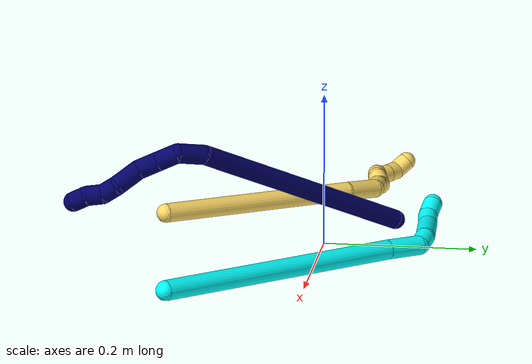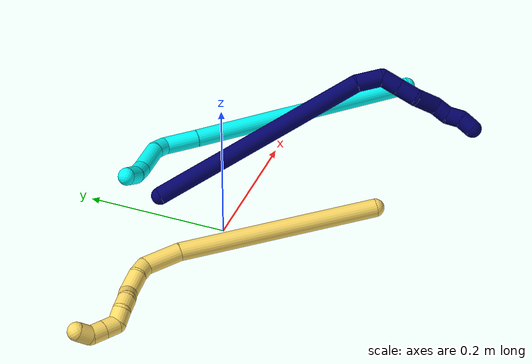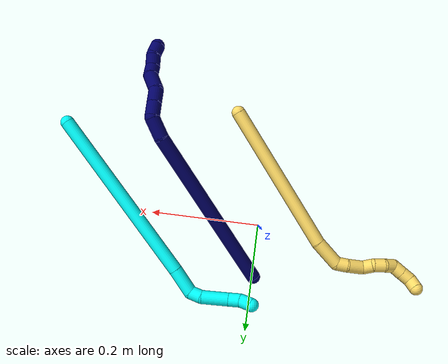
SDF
<sdf version="1.7">
 <world name="default">
  <model name="photoneo_s_sensor">
   <static>1</static>
   <pose>0 0 2 1.57079 1.57079 3.14159</pose>
   <link name="link">
    <inertial><mass>0.1</mass></inertial>
    <sensor name="sensor" type="depth">
     <update_rate>30</update_rate>
     <camera>
      <horizontal_fov>1.22</horizontal_fov>
      <image><width>1920</width><height>1200</height><format>B8G8R8</format></image>
      <clip><near>0.1</near><far>4</far></clip>
      <depth_camera><output>points</output></depth_camera>
     </camera>
     <plugin name="camera_plugin" filename="libgazebo_ros_depth_camera.so">
      <baseline>0.2</baseline>
      <alwaysOn>1</alwaysOn>
      <updateRate>0.0</updateRate>
      <cameraName>camera_ir</cameraName>
      <imageTopicName>/camera/color/image_raw</imageTopicName>
      <cameraInfoTopicName>/camera/color/camera_info</cameraInfoTopicName>
      <depthImageTopicName>/camera/depth/image_raw</depthImageTopicName>
      <depthImageCameraInfoTopicName>/camera/depth/camera_info</depthImageCameraInfoTopicName>
      <pointCloudTopicName>/camera/depth/points</pointCloudTopicName>
      <frameName>fr_optical</frameName>
      <pointCloudCutoff>0.1</pointCloudCutoff>
      <pointCloudCutoffMax>2.0</pointCloudCutoffMax>
      <distortionK1>0</distortionK1>
      <distortionK2>0</distortionK2>
      <distortionK3>0</distortionK3>
      <distortionT1>0</distortionT1>
      <distortionT2>0</distortionT2>
      <CxPrime>0</CxPrime>
      <Cx>0</Cx>
      <Cy>0</Cy>
      <focalLength>0</focalLength>
      <hackBaseline>0</hackBaseline>
     </plugin>
    </sensor>
   </link>
  </model>
  <model name="bin">
   <static>1</static>
   <link name="bottom">
    <collision name="collision-bottom">
     <pose>0 0 -0.01 0 -0 0</pose>
     <geometry><box><size>0.8 0.6 0.02</size></box></geometry>
     <surface>
      <friction><ode><mu>100</mu><mu2>100</mu2></ode></friction>
      <contact><collide_bitmask>65535</collide_bitmask></contact>
     </surface>
    </collision>
   </link>
   <link name="west_wall">
    <collision name="collision-west_wall">
     <pose>-0.41 0 0.1 0 -0 0</pose>
     <geometry><box><size>0.02 0.6 0.2</size></box></geometry>
     <surface>
      <friction><ode><mu>100</mu><mu2>100</mu2></ode></friction>
      <contact><collide_bitmask>65535</collide_bitmask></contact>
     </surface>
    </collision>
   </link>
   <link name="east_wall">
    <collision name="collision-east_wall">
     <pose>0.41 0 0.1 0 -0 0</pose>
     <geometry><box><size>0.02 0.6 0.2</size></box></geometry>
     <surface>
      <friction><ode><mu>100</mu><mu2>100</mu2></ode></friction>
      <contact><collide_bitmask>65535</collide_bitmask></contact>
     </surface>
    </collision>
   </link>
   <link name="south_wall">
    <collision name="collision-south_wall">
     <pose>0 -0.31 0.1 0 -0 0</pose>
     <geometry><box><size>0.8 0.02 0.2</size></box></geometry>
     <surface>
      <friction><ode><mu>100</mu><mu2>100</mu2></ode></friction>
      <contact><collide_bitmask>65535</collide_bitmask></contact>
     </surface>
    </collision>
   </link>
   <link name="north_wall">
    <collision name="collision-north_wall">
     <pose>0 0.31 0.1 0 -0 0</pose>
     <geometry><box><size>0.8 0.02 0.2</size></box></geometry>
     <surface>
      <friction><ode><mu>100</mu><mu2>100</mu2></ode></friction>
      <contact><collide_bitmask>65535</collide_bitmask></contact>
     </surface>
    </collision>
   </link>
  </model>
  <model name="3">
   <static>0</static>
   <link name="3">
    <collision name="collision-cylinder-e_1_1_4">
     <pose>-0.087101 0.102652 -0.097759 -2.33179 -0.550975 1.16612</pose>
     <geometry><cylinder><radius>0.0125</radius><length>0.332751</length></cylinder></geometry>
     <surface>
      <friction><ode><mu>1.16</mu><mu2>1.16</mu2><slip1>0</slip1><slip2>0</slip2></ode></friction>
      <contact><ode><kp>1e+06</kp><kd>1</kd><max_vel>0</max_vel><min_depth>0.001</min_depth></ode></contact>
     </surface>
    </collision>
    <visual name="visual-cylinder-e_1_1_4">
     <pose>-0.087101 0.102652 -0.097759 -2.33179 -0.550975 1.16612</pose>
     <geometry><cylinder><radius>0.0125</radius><length>0.332751</length></cylinder></geometry>
     <material><ambient>0.003922 1 0.996078 1</ambient></material>
    </visual>
    <collision name="collision-cylinder-e_2_4_5">
     <pose>-0.186663 0.221406 -0.209261 -2.27731 -0.532048 1.06724</pose>
     <geometry><cylinder><radius>0.0125</radius><length>0.04913</length></cylinder></geometry>
     <surface>
      <friction><ode><mu>1.16</mu><mu2>1.16</mu2><slip1>0</slip1><slip2>0</slip2></ode></friction>
      <contact><ode><kp>1e+06</kp><kd>1</kd><max_vel>0</max_vel><min_depth>0.001</min_depth></ode></contact>
     </surface>
    </collision>
    <visual name="visual-cylinder-e_2_4_5">
     <pose>-0.186663 0.221406 -0.209261 -2.27731 -0.532048 1.06724</pose>
     <geometry><cylinder><radius>0.0125</radius><length>0.04913</length></cylinder></geometry>
     <material><ambient>0.003922 1 0.996078 1</ambient></material>
    </visual>
    <collision name="collision-cylinder-e_3_5_6">
     <pose>-0.205966 0.237972 -0.231606 -3.0877 -0.671167 2.98735</pose>
     <geometry><cylinder><radius>0.0125</radius><length>0.022001</length></cylinder></geometry>
     <surface>
      <friction><ode><mu>1.16</mu><mu2>1.16</mu2><slip1>0</slip1><slip2>0</slip2></ode></friction>
      <contact><ode><kp>1e+06</kp><kd>1</kd><max_vel>0</max_vel><min_depth>0.001</min_depth></ode></contact>
     </surface>
    </collision>
    <visual name="visual-cylinder-e_3_5_6">
     <pose>-0.205966 0.237972 -0.231606 -3.0877 -0.671167 2.98735</pose>
     <geometry><cylinder><radius>0.0125</radius><length>0.022001</length></cylinder></geometry>
     <material><ambient>0.003922 1 0.996078 1</ambient></material>
    </visual>
    <collision name="collision-cylinder-e_4_6_7">
     <pose>-0.221868 0.235346 -0.26346 3.00945 -0.368645 -2.45952</pose>
     <geometry><cylinder><radius>0.0125</radius><length>0.050291</length></cylinder></geometry>
     <surface>
      <friction><ode><mu>1.16</mu><mu2>1.16</mu2><slip1>0</slip1><slip2>0</slip2></ode></friction>
      <contact><ode><kp>1e+06</kp><kd>1</kd><max_vel>0</max_vel><min_depth>0.001</min_depth></ode></contact>
     </surface>
    </collision>
    <visual name="visual-cylinder-e_4_6_7">
     <pose>-0.221868 0.235346 -0.26346 3.00945 -0.368645 -2.45952</pose>
     <geometry><cylinder><radius>0.0125</radius><length>0.050291</length></cylinder></geometry>
     <material><ambient>0.003922 1 0.996078 1</ambient></material>
    </visual>
    <collision name="collision-cylinder-e_5_7_8">
     <pose>-0.236743 0.229522 -0.296032 2.85633 -0.539258 -2.18312</pose>
     <geometry><cylinder><radius>0.0125</radius><length>0.022641</length></cylinder></geometry>
     <surface>
      <friction><ode><mu>1.16</mu><mu2>1.16</mu2><slip1>0</slip1><slip2>0</slip2></ode></friction>
      <contact><ode><kp>1e+06</kp><kd>1</kd><max_vel>0</max_vel><min_depth>0.001</min_depth></ode></contact>
     </surface>
    </collision>
    <visual name="visual-cylinder-e_5_7_8">
     <pose>-0.236743 0.229522 -0.296032 2.85633 -0.539258 -2.18312</pose>
     <geometry><cylinder><radius>0.0125</radius><length>0.022641</length></cylinder></geometry>
     <material><ambient>0.003922 1 0.996078 1</ambient></material>
    </visual>
    <collision name="collision-cylinder-e_6_8_2">
     <pose>-0.251306 0.22574 -0.312886 3.00333 -0.855313 -2.84006</pose>
     <geometry><cylinder><radius>0.0125</radius><length>0.023186</length></cylinder></geometry>
     <surface>
      <friction><ode><mu>1.16</mu><mu2>1.16</mu2><slip1>0</slip1><slip2>0</slip2></ode></friction>
      <contact><ode><kp>1e+06</kp><kd>1</kd><max_vel>0</max_vel><min_depth>0.001</min_depth></ode></contact>
     </surface>
    </collision>
    <visual name="visual-cylinder-e_6_8_2">
     <pose>-0.251306 0.22574 -0.312886 3.00333 -0.855313 -2.84006</pose>
     <geometry><cylinder><radius>0.0125</radius><length>0.023186</length></cylinder></geometry>
     <material><ambient>0.003922 1 0.996078 1</ambient></material>
    </visual>
    <collision name="collision-sphere-2">
     <pose>-0.260056 0.224692 -0.320418 0 -0 0</pose>
     <geometry><sphere><radius>0.0125</radius></sphere></geometry>
     <surface>
      <friction><ode><mu>1.16</mu><mu2>1.16</mu2><slip1>0</slip1><slip2>0</slip2></ode></friction>
      <contact><ode><kp>1e+06</kp><kd>1</kd><max_vel>0</max_vel><min_depth>0.001</min_depth></ode></contact>
     </surface>
    </collision>
    <visual name="visual-sphere-2">
     <pose>-0.260056 0.224692 -0.320418 0 -0 0</pose>
     <geometry><sphere><radius>0.0125</radius></sphere></geometry>
     <material><ambient>0.003922 1 0.996078 1</ambient></material>
    </visual>
    <collision name="collision-sphere-4">
     <pose>-0.174201 0.205304 -0.195519 0 -0 0</pose>
     <geometry><sphere><radius>0.0125</radius></sphere></geometry>
     <surface>
      <friction><ode><mu>1.16</mu><mu2>1.16</mu2><slip1>0</slip1><slip2>0</slip2></ode></friction>
      <contact><ode><kp>1e+06</kp><kd>1</kd><max_vel>0</max_vel><min_depth>0.001</min_depth></ode></contact>
     </surface>
    </collision>
    <visual name="visual-sphere-4">
     <pose>-0.174201 0.205304 -0.195519 0 -0 0</pose>
     <geometry><sphere><radius>0.0125</radius></sphere></geometry>
     <material><ambient>0.003922 1 0.996078 1</ambient></material>
    </visual>
    <collision name="collision-sphere-1">
     <geometry><sphere><radius>0.0125</radius></sphere></geometry>
     <surface>
      <friction><ode><mu>1.16</mu><mu2>1.16</mu2><slip1>0</slip1><slip2>0</slip2></ode></friction>
      <contact><ode><kp>1e+06</kp><kd>1</kd><max_vel>0</max_vel><min_depth>0.001</min_depth></ode></contact>
     </surface>
    </collision>
    <visual name="visual-sphere-1">
     <geometry><sphere><radius>0.0125</radius></sphere></geometry>
     <material><ambient>0.003922 1 0.996078 1</ambient></material>
    </visual>
    <collision name="collision-sphere-8">
     <pose>-0.242556 0.226788 -0.305354 0 -0 0</pose>
     <geometry><sphere><radius>0.0125</radius></sphere></geometry>
     <surface>
      <friction><ode><mu>1.16</mu><mu2>1.16</mu2><slip1>0</slip1><slip2>0</slip2></ode></friction>
      <contact><ode><kp>1e+06</kp><kd>1</kd><max_vel>0</max_vel><min_depth>0.001</min_depth></ode></contact>
     </surface>
    </collision>
    <visual name="visual-sphere-8">
     <pose>-0.242556 0.226788 -0.305354 0 -0 0</pose>
     <geometry><sphere><radius>0.0125</radius></sphere></geometry>
     <material><ambient>0.003922 1 0.996078 1</ambient></material>
    </visual>
    <collision name="collision-sphere-5">
     <pose>-0.199125 0.237508 -0.223004 0 -0 0</pose>
     <geometry><sphere><radius>0.0125</radius></sphere></geometry>
     <surface>
      <friction><ode><mu>1.16</mu><mu2>1.16</mu2><slip1>0</slip1><slip2>0</slip2></ode></friction>
      <contact><ode><kp>1e+06</kp><kd>1</kd><max_vel>0</max_vel><min_depth>0.001</min_depth></ode></contact>
     </surface>
    </collision>
    <visual name="visual-sphere-5">
     <pose>-0.199125 0.237508 -0.223004 0 -0 0</pose>
     <geometry><sphere><radius>0.0125</radius></sphere></geometry>
     <material><ambient>0.003922 1 0.996078 1</ambient></material>
    </visual>
    <collision name="collision-sphere-6">
     <pose>-0.212807 0.238436 -0.240208 0 -0 0</pose>
     <geometry><sphere><radius>0.0125</radius></sphere></geometry>
     <surface>
      <friction><ode><mu>1.16</mu><mu2>1.16</mu2><slip1>0</slip1><slip2>0</slip2></ode></friction>
      <contact><ode><kp>1e+06</kp><kd>1</kd><max_vel>0</max_vel><min_depth>0.001</min_depth></ode></contact>
     </surface>
    </collision>
    <visual name="visual-sphere-6">
     <pose>-0.212807 0.238436 -0.240208 0 -0 0</pose>
     <geometry><sphere><radius>0.0125</radius></sphere></geometry>
     <material><ambient>0.003922 1 0.996078 1</ambient></material>
    </visual>
    <collision name="collision-sphere-7">
     <pose>-0.23093 0.232255 -0.286711 0 -0 0</pose>
     <geometry><sphere><radius>0.0125</radius></sphere></geometry>
     <surface>
      <friction><ode><mu>1.16</mu><mu2>1.16</mu2><slip1>0</slip1><slip2>0</slip2></ode></friction>
      <contact><ode><kp>1e+06</kp><kd>1</kd><max_vel>0</max_vel><min_depth>0.001</min_depth></ode></contact>
     </surface>
    </collision>
    <visual name="visual-sphere-7">
     <pose>-0.23093 0.232255 -0.286711 0 -0 0</pose>
     <geometry><sphere><radius>0.0125</radius></sphere></geometry>
     <material><ambient>0.003922 1 0.996078 1</ambient></material>
    </visual>
    <inertial>
     <pose>-0.13006 0.145075 -0.150225 0 -0 0</pose>
     <mass>0.5</mass>
     <inertia>
      <ixx>0.003421</ixx>
      <ixy>0</ixy>
      <ixz>0</ixz>
      <iyy>0.002685</iyy>
      <iyz>0</iyz>
      <izz>-0.000305</izz>
     </inertia>
    </inertial>
   </link>
   <pose>0.367695 -0.144437 0.043329 -0.88158 1.00064 -0.879888</pose>
  </model>
  <model name="5">
   <static>0</static>
   <link name="5">
    <collision name="collision-cylinder-e_1_1_4">
     <pose>-0.039193 0.074781 -0.109588 -2.54279 -0.287248 0.876277</pose>
     <geometry><cylinder><radius>0.0125</radius><length>0.276679</length></cylinder></geometry>
     <surface>
      <friction><ode><mu>1.16</mu><mu2>1.16</mu2><slip1>0</slip1><slip2>0</slip2></ode></friction>
      <contact><ode><kp>1e+06</kp><kd>1</kd><max_vel>0</max_vel><min_depth>0.001</min_depth></ode></contact>
     </surface>
    </collision>
    <visual name="visual-cylinder-e_1_1_4">
     <pose>-0.039193 0.074781 -0.109588 -2.54279 -0.287248 0.876277</pose>
     <geometry><cylinder><radius>0.0125</radius><length>0.276679</length></cylinder></geometry>
     <material><ambient>1 0.858824 0.4 1</ambient></material>
    </visual>
    <collision name="collision-cylinder-e_2_4_5">
     <pose>-0.089886 0.161194 -0.23871 -2.60451 -0.468267 1.42823</pose>
     <geometry><cylinder><radius>0.0125</radius><length>0.050956</length></cylinder></geometry>
     <surface>
      <friction><ode><mu>1.16</mu><mu2>1.16</mu2><slip1>0</slip1><slip2>0</slip2></ode></friction>
      <contact><ode><kp>1e+06</kp><kd>1</kd><max_vel>0</max_vel><min_depth>0.001</min_depth></ode></contact>
     </surface>
    </collision>
    <visual name="visual-cylinder-e_2_4_5">
     <pose>-0.089886 0.161194 -0.23871 -2.60451 -0.468267 1.42823</pose>
     <geometry><cylinder><radius>0.0125</radius><length>0.050956</length></cylinder></geometry>
     <material><ambient>1 0.858824 0.4 1</ambient></material>
    </visual>
    <collision name="collision-cylinder-e_3_5_6">
     <pose>-0.110328 0.175926 -0.261519 -2.38368 -1.1037 1.99335</pose>
     <geometry><cylinder><radius>0.0125</radius><length>0.020031</length></cylinder></geometry>
     <surface>
      <friction><ode><mu>1.16</mu><mu2>1.16</mu2><slip1>0</slip1><slip2>0</slip2></ode></friction>
      <contact><ode><kp>1e+06</kp><kd>1</kd><max_vel>0</max_vel><min_depth>0.001</min_depth></ode></contact>
     </surface>
    </collision>
    <visual name="visual-cylinder-e_3_5_6">
     <pose>-0.110328 0.175926 -0.261519 -2.38368 -1.1037 1.99335</pose>
     <geometry><cylinder><radius>0.0125</radius><length>0.020031</length></cylinder></geometry>
     <material><ambient>1 0.858824 0.4 1</ambient></material>
    </visual>
    <collision name="collision-cylinder-e_4_6_7">
     <pose>-0.133354 0.179862 -0.2716 -3.01933 -1.11773 2.94646</pose>
     <geometry><cylinder><radius>0.0125</radius><length>0.031329</length></cylinder></geometry>
     <surface>
      <friction><ode><mu>1.16</mu><mu2>1.16</mu2><slip1>0</slip1><slip2>0</slip2></ode></friction>
      <contact><ode><kp>1e+06</kp><kd>1</kd><max_vel>0</max_vel><min_depth>0.001</min_depth></ode></contact>
     </surface>
    </collision>
    <visual name="visual-cylinder-e_4_6_7">
     <pose>-0.133354 0.179862 -0.2716 -3.01933 -1.11773 2.94646</pose>
     <geometry><cylinder><radius>0.0125</radius><length>0.031329</length></cylinder></geometry>
     <material><ambient>1 0.858824 0.4 1</ambient></material>
    </visual>
    <collision name="collision-cylinder-e_5_7_8">
     <pose>-0.156863 0.184186 -0.276316 -1.03085 -1.16348 0.713267</pose>
     <geometry><cylinder><radius>0.0125</radius><length>0.020529</length></cylinder></geometry>
     <surface>
      <friction><ode><mu>1.16</mu><mu2>1.16</mu2><slip1>0</slip1><slip2>0</slip2></ode></friction>
      <contact><ode><kp>1e+06</kp><kd>1</kd><max_vel>0</max_vel><min_depth>0.001</min_depth></ode></contact>
     </surface>
    </collision>
    <visual name="visual-cylinder-e_5_7_8">
     <pose>-0.156863 0.184186 -0.276316 -1.03085 -1.16348 0.713267</pose>
     <geometry><cylinder><radius>0.0125</radius><length>0.020529</length></cylinder></geometry>
     <material><ambient>1 0.858824 0.4 1</ambient></material>
    </visual>
    <collision name="collision-cylinder-e_6_8_9">
     <pose>-0.176109 0.189179 -0.276576 -2.5722 -1.29385 2.40236</pose>
     <geometry><cylinder><radius>0.0125</radius><length>0.02042</length></cylinder></geometry>
     <surface>
      <friction><ode><mu>1.16</mu><mu2>1.16</mu2><slip1>0</slip1><slip2>0</slip2></ode></friction>
      <contact><ode><kp>1e+06</kp><kd>1</kd><max_vel>0</max_vel><min_depth>0.001</min_depth></ode></contact>
     </surface>
    </collision>
    <visual name="visual-cylinder-e_6_8_9">
     <pose>-0.176109 0.189179 -0.276576 -2.5722 -1.29385 2.40236</pose>
     <geometry><cylinder><radius>0.0125</radius><length>0.02042</length></cylinder></geometry>
     <material><ambient>1 0.858824 0.4 1</ambient></material>
    </visual>
    <collision name="collision-cylinder-e_7_9_10">
     <pose>-0.194659 0.18934 -0.28364 2.86382 -1.05923 -2.6728</pose>
     <geometry><cylinder><radius>0.0125</radius><length>0.020021</length></cylinder></geometry>
     <surface>
      <friction><ode><mu>1.16</mu><mu2>1.16</mu2><slip1>0</slip1><slip2>0</slip2></ode></friction>
      <contact><ode><kp>1e+06</kp><kd>1</kd><max_vel>0</max_vel><min_depth>0.001</min_depth></ode></contact>
     </surface>
    </collision>
    <visual name="visual-cylinder-e_7_9_10">
     <pose>-0.194659 0.18934 -0.28364 2.86382 -1.05923 -2.6728</pose>
     <geometry><cylinder><radius>0.0125</radius><length>0.020021</length></cylinder></geometry>
     <material><ambient>1 0.858824 0.4 1</ambient></material>
    </visual>
    <collision name="collision-cylinder-e_8_10_11">
     <pose>-0.208981 0.193206 -0.294827 -2.46398 -0.592402 1.42743</pose>
     <geometry><cylinder><radius>0.0125</radius><length>0.020034</length></cylinder></geometry>
     <surface>
      <friction><ode><mu>1.16</mu><mu2>1.16</mu2><slip1>0</slip1><slip2>0</slip2></ode></friction>
      <contact><ode><kp>1e+06</kp><kd>1</kd><max_vel>0</max_vel><min_depth>0.001</min_depth></ode></contact>
     </surface>
    </collision>
    <visual name="visual-cylinder-e_8_10_11">
     <pose>-0.208981 0.193206 -0.294827 -2.46398 -0.592402 1.42743</pose>
     <geometry><cylinder><radius>0.0125</radius><length>0.020034</length></cylinder></geometry>
     <material><ambient>1 0.858824 0.4 1</ambient></material>
    </visual>
    <collision name="collision-cylinder-e_9_11_12">
     <pose>-0.220347 0.203767 -0.307469 -2.42699 -0.61546 1.41055</pose>
     <geometry><cylinder><radius>0.0125</radius><length>0.020002</length></cylinder></geometry>
     <surface>
      <friction><ode><mu>1.16</mu><mu2>1.16</mu2><slip1>0</slip1><slip2>0</slip2></ode></friction>
      <contact><ode><kp>1e+06</kp><kd>1</kd><max_vel>0</max_vel><min_depth>0.001</min_depth></ode></contact>
     </surface>
    </collision>
    <visual name="visual-cylinder-e_9_11_12">
     <pose>-0.220347 0.203767 -0.307469 -2.42699 -0.61546 1.41055</pose>
     <geometry><cylinder><radius>0.0125</radius><length>0.020002</length></cylinder></geometry>
     <material><ambient>1 0.858824 0.4 1</ambient></material>
    </visual>
    <collision name="collision-cylinder-e_10_12_2">
     <pose>-0.227853 0.218371 -0.317012 -1.92058 -0.174101 0.24818</pose>
     <geometry><cylinder><radius>0.0125</radius><length>0.020001</length></cylinder></geometry>
     <surface>
      <friction><ode><mu>1.16</mu><mu2>1.16</mu2><slip1>0</slip1><slip2>0</slip2></ode></friction>
      <contact><ode><kp>1e+06</kp><kd>1</kd><max_vel>0</max_vel><min_depth>0.001</min_depth></ode></contact>
     </surface>
    </collision>
    <visual name="visual-cylinder-e_10_12_2">
     <pose>-0.227853 0.218371 -0.317012 -1.92058 -0.174101 0.24818</pose>
     <geometry><cylinder><radius>0.0125</radius><length>0.020001</length></cylinder></geometry>
     <material><ambient>1 0.858824 0.4 1</ambient></material>
    </visual>
    <collision name="collision-sphere-2">
     <pose>-0.229586 0.227624 -0.320388 0 -0 0</pose>
     <geometry><sphere><radius>0.0125</radius></sphere></geometry>
     <surface>
      <friction><ode><mu>1.16</mu><mu2>1.16</mu2><slip1>0</slip1><slip2>0</slip2></ode></friction>
      <contact><ode><kp>1e+06</kp><kd>1</kd><max_vel>0</max_vel><min_depth>0.001</min_depth></ode></contact>
     </surface>
    </collision>
    <visual name="visual-sphere-2">
     <pose>-0.229586 0.227624 -0.320388 0 -0 0</pose>
     <geometry><sphere><radius>0.0125</radius></sphere></geometry>
     <material><ambient>1 0.858824 0.4 1</ambient></material>
    </visual>
    <collision name="collision-sphere-12">
     <pose>-0.226121 0.209118 -0.313637 0 -0 0</pose>
     <geometry><sphere><radius>0.0125</radius></sphere></geometry>
     <surface>
      <friction><ode><mu>1.16</mu><mu2>1.16</mu2><slip1>0</slip1><slip2>0</slip2></ode></friction>
      <contact><ode><kp>1e+06</kp><kd>1</kd><max_vel>0</max_vel><min_depth>0.001</min_depth></ode></contact>
     </surface>
    </collision>
    <visual name="visual-sphere-12">
     <pose>-0.226121 0.209118 -0.313637 0 -0 0</pose>
     <geometry><sphere><radius>0.0125</radius></sphere></geometry>
     <material><ambient>1 0.858824 0.4 1</ambient></material>
    </visual>
    <collision name="collision-sphere-11">
     <pose>-0.214574 0.198416 -0.301301 0 -0 0</pose>
     <geometry><sphere><radius>0.0125</radius></sphere></geometry>
     <surface>
      <friction><ode><mu>1.16</mu><mu2>1.16</mu2><slip1>0</slip1><slip2>0</slip2></ode></friction>
      <contact><ode><kp>1e+06</kp><kd>1</kd><max_vel>0</max_vel><min_depth>0.001</min_depth></ode></contact>
     </surface>
    </collision>
    <visual name="visual-sphere-11">
     <pose>-0.214574 0.198416 -0.301301 0 -0 0</pose>
     <geometry><sphere><radius>0.0125</radius></sphere></geometry>
     <material><ambient>1 0.858824 0.4 1</ambient></material>
    </visual>
    <collision name="collision-sphere-10">
     <pose>-0.203388 0.187996 -0.288353 0 -0 0</pose>
     <geometry><sphere><radius>0.0125</radius></sphere></geometry>
     <surface>
      <friction><ode><mu>1.16</mu><mu2>1.16</mu2><slip1>0</slip1><slip2>0</slip2></ode></friction>
      <contact><ode><kp>1e+06</kp><kd>1</kd><max_vel>0</max_vel><min_depth>0.001</min_depth></ode></contact>
     </surface>
    </collision>
    <visual name="visual-sphere-10">
     <pose>-0.203388 0.187996 -0.288353 0 -0 0</pose>
     <geometry><sphere><radius>0.0125</radius></sphere></geometry>
     <material><ambient>1 0.858824 0.4 1</ambient></material>
    </visual>
    <collision name="collision-sphere-9">
     <pose>-0.18593 0.190684 -0.278927 0 -0 0</pose>
     <geometry><sphere><radius>0.0125</radius></sphere></geometry>
     <surface>
      <friction><ode><mu>1.16</mu><mu2>1.16</mu2><slip1>0</slip1><slip2>0</slip2></ode></friction>
      <contact><ode><kp>1e+06</kp><kd>1</kd><max_vel>0</max_vel><min_depth>0.001</min_depth></ode></contact>
     </surface>
    </collision>
    <visual name="visual-sphere-9">
     <pose>-0.18593 0.190684 -0.278927 0 -0 0</pose>
     <geometry><sphere><radius>0.0125</radius></sphere></geometry>
     <material><ambient>1 0.858824 0.4 1</ambient></material>
    </visual>
    <collision name="collision-sphere-4">
     <pose>-0.078387 0.149562 -0.219176 0 -0 0</pose>
     <geometry><sphere><radius>0.0125</radius></sphere></geometry>
     <surface>
      <friction><ode><mu>1.16</mu><mu2>1.16</mu2><slip1>0</slip1><slip2>0</slip2></ode></friction>
      <contact><ode><kp>1e+06</kp><kd>1</kd><max_vel>0</max_vel><min_depth>0.001</min_depth></ode></contact>
     </surface>
    </collision>
    <visual name="visual-sphere-4">
     <pose>-0.078387 0.149562 -0.219176 0 -0 0</pose>
     <geometry><sphere><radius>0.0125</radius></sphere></geometry>
     <material><ambient>1 0.858824 0.4 1</ambient></material>
    </visual>
    <collision name="collision-sphere-1">
     <geometry><sphere><radius>0.0125</radius></sphere></geometry>
     <surface>
      <friction><ode><mu>1.16</mu><mu2>1.16</mu2><slip1>0</slip1><slip2>0</slip2></ode></friction>
      <contact><ode><kp>1e+06</kp><kd>1</kd><max_vel>0</max_vel><min_depth>0.001</min_depth></ode></contact>
     </surface>
    </collision>
    <visual name="visual-sphere-1">
     <geometry><sphere><radius>0.0125</radius></sphere></geometry>
     <material><ambient>1 0.858824 0.4 1</ambient></material>
    </visual>
    <collision name="collision-sphere-8">
     <pose>-0.166288 0.187674 -0.274225 0 -0 0</pose>
     <geometry><sphere><radius>0.0125</radius></sphere></geometry>
     <surface>
      <friction><ode><mu>1.16</mu><mu2>1.16</mu2><slip1>0</slip1><slip2>0</slip2></ode></friction>
      <contact><ode><kp>1e+06</kp><kd>1</kd><max_vel>0</max_vel><min_depth>0.001</min_depth></ode></contact>
     </surface>
    </collision>
    <visual name="visual-sphere-8">
     <pose>-0.166288 0.187674 -0.274225 0 -0 0</pose>
     <geometry><sphere><radius>0.0125</radius></sphere></geometry>
     <material><ambient>1 0.858824 0.4 1</ambient></material>
    </visual>
    <collision name="collision-sphere-5">
     <pose>-0.101385 0.172826 -0.258244 0 -0 0</pose>
     <geometry><sphere><radius>0.0125</radius></sphere></geometry>
     <surface>
      <friction><ode><mu>1.16</mu><mu2>1.16</mu2><slip1>0</slip1><slip2>0</slip2></ode></friction>
      <contact><ode><kp>1e+06</kp><kd>1</kd><max_vel>0</max_vel><min_depth>0.001</min_depth></ode></contact>
     </surface>
    </collision>
    <visual name="visual-sphere-5">
     <pose>-0.101385 0.172826 -0.258244 0 -0 0</pose>
     <geometry><sphere><radius>0.0125</radius></sphere></geometry>
     <material><ambient>1 0.858824 0.4 1</ambient></material>
    </visual>
    <collision name="collision-sphere-6">
     <pose>-0.11927 0.179026 -0.264795 0 -0 0</pose>
     <geometry><sphere><radius>0.0125</radius></sphere></geometry>
     <surface>
      <friction><ode><mu>1.16</mu><mu2>1.16</mu2><slip1>0</slip1><slip2>0</slip2></ode></friction>
      <contact><ode><kp>1e+06</kp><kd>1</kd><max_vel>0</max_vel><min_depth>0.001</min_depth></ode></contact>
     </surface>
    </collision>
    <visual name="visual-sphere-6">
     <pose>-0.11927 0.179026 -0.264795 0 -0 0</pose>
     <geometry><sphere><radius>0.0125</radius></sphere></geometry>
     <material><ambient>1 0.858824 0.4 1</ambient></material>
    </visual>
    <collision name="collision-sphere-7">
     <pose>-0.147439 0.180698 -0.278406 0 -0 0</pose>
     <geometry><sphere><radius>0.0125</radius></sphere></geometry>
     <surface>
      <friction><ode><mu>1.16</mu><mu2>1.16</mu2><slip1>0</slip1><slip2>0</slip2></ode></friction>
      <contact><ode><kp>1e+06</kp><kd>1</kd><max_vel>0</max_vel><min_depth>0.001</min_depth></ode></contact>
     </surface>
    </collision>
    <visual name="visual-sphere-7">
     <pose>-0.147439 0.180698 -0.278406 0 -0 0</pose>
     <geometry><sphere><radius>0.0125</radius></sphere></geometry>
     <material><ambient>1 0.858824 0.4 1</ambient></material>
    </visual>
    <inertial>
     <pose>-0.091354 0.123623 -0.183255 0 -0 0</pose>
     <mass>0.5</mass>
     <inertia>
      <ixx>0.002397</ixx>
      <ixy>0</ixy>
      <ixz>0</ixz>
      <iyy>0.000632</iyy>
      <iyz>0</iyz>
      <izz>-0.000475</izz>
     </inertia>
    </inertial>
   </link>
   <pose>0.061113 -0.198853 0.051347 0.956529 -0.071439 0.387516</pose>
  </model>
  <model name="7">
   <static>0</static>
   <link name="7">
    <collision name="collision-cylinder-e_1_1_4">
     <pose>0.099073 -0.038103 0.115256 0.319285 0.684509 0.114604</pose>
     <geometry><cylinder><radius>0.0125</radius><length>0.313376</length></cylinder></geometry>
     <surface>
      <friction><ode><mu>1.16</mu><mu2>1.16</mu2><slip1>0</slip1><slip2>0</slip2></ode></friction>
      <contact><ode><kp>1e+06</kp><kd>1</kd><max_vel>0</max_vel><min_depth>0.001</min_depth></ode></contact>
     </surface>
    </collision>
    <visual name="visual-cylinder-e_1_1_4">
     <pose>0.099073 -0.038103 0.115256 0.319285 0.684509 0.114604</pose>
     <geometry><cylinder><radius>0.0125</radius><length>0.313376</length></cylinder></geometry>
     <material><ambient>0.003922 0 0.403922 1</ambient></material>
    </visual>
    <collision name="collision-cylinder-e_2_4_5">
     <pose>0.207179 -0.085361 0.243447 0.61587 0.51807 0.168163</pose>
     <geometry><cylinder><radius>0.0125</radius><length>0.036483</length></cylinder></geometry>
     <surface>
      <friction><ode><mu>1.16</mu><mu2>1.16</mu2><slip1>0</slip1><slip2>0</slip2></ode></friction>
      <contact><ode><kp>1e+06</kp><kd>1</kd><max_vel>0</max_vel><min_depth>0.001</min_depth></ode></contact>
     </surface>
    </collision>
    <visual name="visual-cylinder-e_2_4_5">
     <pose>0.207179 -0.085361 0.243447 0.61587 0.51807 0.168163</pose>
     <geometry><cylinder><radius>0.0125</radius><length>0.036483</length></cylinder></geometry>
     <material><ambient>0.003922 0 0.403922 1</ambient></material>
    </visual>
    <collision name="collision-cylinder-e_3_5_6">
     <pose>0.21481 -0.10608 0.262693 1.07133 -0.106026 -0.06297</pose>
     <geometry><cylinder><radius>0.0125</radius><length>0.026496</length></cylinder></geometry>
     <surface>
      <friction><ode><mu>1.16</mu><mu2>1.16</mu2><slip1>0</slip1><slip2>0</slip2></ode></friction>
      <contact><ode><kp>1e+06</kp><kd>1</kd><max_vel>0</max_vel><min_depth>0.001</min_depth></ode></contact>
     </surface>
    </collision>
    <visual name="visual-cylinder-e_3_5_6">
     <pose>0.21481 -0.10608 0.262693 1.07133 -0.106026 -0.06297</pose>
     <geometry><cylinder><radius>0.0125</radius><length>0.026496</length></cylinder></geometry>
     <material><ambient>0.003922 0 0.403922 1</ambient></material>
    </visual>
    <collision name="collision-cylinder-e_4_6_7">
     <pose>0.211941 -0.129691 0.275564 1.07207 -0.106544 -0.063331</pose>
     <geometry><cylinder><radius>0.0125</radius><length>0.02759</length></cylinder></geometry>
     <surface>
      <friction><ode><mu>1.16</mu><mu2>1.16</mu2><slip1>0</slip1><slip2>0</slip2></ode></friction>
      <contact><ode><kp>1e+06</kp><kd>1</kd><max_vel>0</max_vel><min_depth>0.001</min_depth></ode></contact>
     </surface>
    </collision>
    <visual name="visual-cylinder-e_4_6_7">
     <pose>0.211941 -0.129691 0.275564 1.07207 -0.106544 -0.063331</pose>
     <geometry><cylinder><radius>0.0125</radius><length>0.02759</length></cylinder></geometry>
     <material><ambient>0.003922 0 0.403922 1</ambient></material>
    </visual>
    <collision name="collision-cylinder-e_5_7_8">
     <pose>0.214898 -0.157752 0.285977 1.33478 0.262403 0.207227</pose>
     <geometry><cylinder><radius>0.0125</radius><length>0.034112</length></cylinder></geometry>
     <surface>
      <friction><ode><mu>1.16</mu><mu2>1.16</mu2><slip1>0</slip1><slip2>0</slip2></ode></friction>
      <contact><ode><kp>1e+06</kp><kd>1</kd><max_vel>0</max_vel><min_depth>0.001</min_depth></ode></contact>
     </surface>
    </collision>
    <visual name="visual-cylinder-e_5_7_8">
     <pose>0.214898 -0.157752 0.285977 1.33478 0.262403 0.207227</pose>
     <geometry><cylinder><radius>0.0125</radius><length>0.034112</length></cylinder></geometry>
     <material><ambient>0.003922 0 0.403922 1</ambient></material>
    </visual>
    <collision name="collision-cylinder-e_6_8_9">
     <pose>0.217538 -0.183402 0.293494 1.2072 -0.171423 -0.118337</pose>
     <geometry><cylinder><radius>0.0125</radius><length>0.020924</length></cylinder></geometry>
     <surface>
      <friction><ode><mu>1.16</mu><mu2>1.16</mu2><slip1>0</slip1><slip2>0</slip2></ode></friction>
      <contact><ode><kp>1e+06</kp><kd>1</kd><max_vel>0</max_vel><min_depth>0.001</min_depth></ode></contact>
     </surface>
    </collision>
    <visual name="visual-cylinder-e_6_8_9">
     <pose>0.217538 -0.183402 0.293494 1.2072 -0.171423 -0.118337</pose>
     <geometry><cylinder><radius>0.0125</radius><length>0.020924</length></cylinder></geometry>
     <material><ambient>0.003922 0 0.403922 1</ambient></material>
    </visual>
    <collision name="collision-cylinder-e_7_9_10">
     <pose>0.215692 -0.200258 0.304337 0.788494 -0.005949 -0.002475</pose>
     <geometry><cylinder><radius>0.0125</radius><length>0.020361</length></cylinder></geometry>
     <surface>
      <friction><ode><mu>1.16</mu><mu2>1.16</mu2><slip1>0</slip1><slip2>0</slip2></ode></friction>
      <contact><ode><kp>1e+06</kp><kd>1</kd><max_vel>0</max_vel><min_depth>0.001</min_depth></ode></contact>
     </surface>
    </collision>
    <visual name="visual-cylinder-e_7_9_10">
     <pose>0.215692 -0.200258 0.304337 0.788494 -0.005949 -0.002475</pose>
     <geometry><cylinder><radius>0.0125</radius><length>0.020361</length></cylinder></geometry>
     <material><ambient>0.003922 0 0.403922 1</ambient></material>
    </visual>
    <collision name="collision-cylinder-e_8_10_2">
     <pose>0.212283 -0.216082 0.316144 1.07699 -0.330217 -0.198427</pose>
     <geometry><cylinder><radius>0.0125</radius><length>0.020658</length></cylinder></geometry>
     <surface>
      <friction><ode><mu>1.16</mu><mu2>1.16</mu2><slip1>0</slip1><slip2>0</slip2></ode></friction>
      <contact><ode><kp>1e+06</kp><kd>1</kd><max_vel>0</max_vel><min_depth>0.001</min_depth></ode></contact>
     </surface>
    </collision>
    <visual name="visual-cylinder-e_8_10_2">
     <pose>0.212283 -0.216082 0.316144 1.07699 -0.330217 -0.198427</pose>
     <geometry><cylinder><radius>0.0125</radius><length>0.020658</length></cylinder></geometry>
     <material><ambient>0.003922 0 0.403922 1</ambient></material>
    </visual>
    <collision name="collision-sphere-2">
     <pose>0.208933 -0.224686 0.320775 0 -0 0</pose>
     <geometry><sphere><radius>0.0125</radius></sphere></geometry>
     <surface>
      <friction><ode><mu>1.16</mu><mu2>1.16</mu2><slip1>0</slip1><slip2>0</slip2></ode></friction>
      <contact><ode><kp>1e+06</kp><kd>1</kd><max_vel>0</max_vel><min_depth>0.001</min_depth></ode></contact>
     </surface>
    </collision>
    <visual name="visual-sphere-2">
     <pose>0.208933 -0.224686 0.320775 0 -0 0</pose>
     <geometry><sphere><radius>0.0125</radius></sphere></geometry>
     <material><ambient>0.003922 0 0.403922 1</ambient></material>
    </visual>
    <collision name="collision-sphere-10">
     <pose>0.215632 -0.207478 0.311513 0 -0 0</pose>
     <geometry><sphere><radius>0.0125</radius></sphere></geometry>
     <surface>
      <friction><ode><mu>1.16</mu><mu2>1.16</mu2><slip1>0</slip1><slip2>0</slip2></ode></friction>
      <contact><ode><kp>1e+06</kp><kd>1</kd><max_vel>0</max_vel><min_depth>0.001</min_depth></ode></contact>
     </surface>
    </collision>
    <visual name="visual-sphere-10">
     <pose>0.215632 -0.207478 0.311513 0 -0 0</pose>
     <geometry><sphere><radius>0.0125</radius></sphere></geometry>
     <material><ambient>0.003922 0 0.403922 1</ambient></material>
    </visual>
    <collision name="collision-sphere-9">
     <pose>0.215753 -0.193037 0.297161 0 -0 0</pose>
     <geometry><sphere><radius>0.0125</radius></sphere></geometry>
     <surface>
      <friction><ode><mu>1.16</mu><mu2>1.16</mu2><slip1>0</slip1><slip2>0</slip2></ode></friction>
      <contact><ode><kp>1e+06</kp><kd>1</kd><max_vel>0</max_vel><min_depth>0.001</min_depth></ode></contact>
     </surface>
    </collision>
    <visual name="visual-sphere-9">
     <pose>0.215753 -0.193037 0.297161 0 -0 0</pose>
     <geometry><sphere><radius>0.0125</radius></sphere></geometry>
     <material><ambient>0.003922 0 0.403922 1</ambient></material>
    </visual>
    <collision name="collision-sphere-4">
     <pose>0.198145 -0.076206 0.230511 0 -0 0</pose>
     <geometry><sphere><radius>0.0125</radius></sphere></geometry>
     <surface>
      <friction><ode><mu>1.16</mu><mu2>1.16</mu2><slip1>0</slip1><slip2>0</slip2></ode></friction>
      <contact><ode><kp>1e+06</kp><kd>1</kd><max_vel>0</max_vel><min_depth>0.001</min_depth></ode></contact>
     </surface>
    </collision>
    <visual name="visual-sphere-4">
     <pose>0.198145 -0.076206 0.230511 0 -0 0</pose>
     <geometry><sphere><radius>0.0125</radius></sphere></geometry>
     <material><ambient>0.003922 0 0.403922 1</ambient></material>
    </visual>
    <collision name="collision-sphere-1">
     <geometry><sphere><radius>0.0125</radius></sphere></geometry>
     <surface>
      <friction><ode><mu>1.16</mu><mu2>1.16</mu2><slip1>0</slip1><slip2>0</slip2></ode></friction>
      <contact><ode><kp>1e+06</kp><kd>1</kd><max_vel>0</max_vel><min_depth>0.001</min_depth></ode></contact>
     </surface>
    </collision>
    <visual name="visual-sphere-1">
     <geometry><sphere><radius>0.0125</radius></sphere></geometry>
     <material><ambient>0.003922 0 0.403922 1</ambient></material>
    </visual>
    <collision name="collision-sphere-8">
     <pose>0.219322 -0.173767 0.289828 0 -0 0</pose>
     <geometry><sphere><radius>0.0125</radius></sphere></geometry>
     <surface>
      <friction><ode><mu>1.16</mu><mu2>1.16</mu2><slip1>0</slip1><slip2>0</slip2></ode></friction>
      <contact><ode><kp>1e+06</kp><kd>1</kd><max_vel>0</max_vel><min_depth>0.001</min_depth></ode></contact>
     </surface>
    </collision>
    <visual name="visual-sphere-8">
     <pose>0.219322 -0.173767 0.289828 0 -0 0</pose>
     <geometry><sphere><radius>0.0125</radius></sphere></geometry>
     <material><ambient>0.003922 0 0.403922 1</ambient></material>
    </visual>
    <collision name="collision-sphere-5">
     <pose>0.216212 -0.094516 0.256383 0 -0 0</pose>
     <geometry><sphere><radius>0.0125</radius></sphere></geometry>
     <surface>
      <friction><ode><mu>1.16</mu><mu2>1.16</mu2><slip1>0</slip1><slip2>0</slip2></ode></friction>
      <contact><ode><kp>1e+06</kp><kd>1</kd><max_vel>0</max_vel><min_depth>0.001</min_depth></ode></contact>
     </surface>
    </collision>
    <visual name="visual-sphere-5">
     <pose>0.216212 -0.094516 0.256383 0 -0 0</pose>
     <geometry><sphere><radius>0.0125</radius></sphere></geometry>
     <material><ambient>0.003922 0 0.403922 1</ambient></material>
    </visual>
    <collision name="collision-sphere-6">
     <pose>0.213408 -0.117644 0.269003 0 -0 0</pose>
     <geometry><sphere><radius>0.0125</radius></sphere></geometry>
     <surface>
      <friction><ode><mu>1.16</mu><mu2>1.16</mu2><slip1>0</slip1><slip2>0</slip2></ode></friction>
      <contact><ode><kp>1e+06</kp><kd>1</kd><max_vel>0</max_vel><min_depth>0.001</min_depth></ode></contact>
     </surface>
    </collision>
    <visual name="visual-sphere-6">
     <pose>0.213408 -0.117644 0.269003 0 -0 0</pose>
     <geometry><sphere><radius>0.0125</radius></sphere></geometry>
     <material><ambient>0.003922 0 0.403922 1</ambient></material>
    </visual>
    <collision name="collision-sphere-7">
     <pose>0.210474 -0.141737 0.282125 0 -0 0</pose>
     <geometry><sphere><radius>0.0125</radius></sphere></geometry>
     <surface>
      <friction><ode><mu>1.16</mu><mu2>1.16</mu2><slip1>0</slip1><slip2>0</slip2></ode></friction>
      <contact><ode><kp>1e+06</kp><kd>1</kd><max_vel>0</max_vel><min_depth>0.001</min_depth></ode></contact>
     </surface>
    </collision>
    <visual name="visual-sphere-7">
     <pose>0.210474 -0.141737 0.282125 0 -0 0</pose>
     <geometry><sphere><radius>0.0125</radius></sphere></geometry>
     <material><ambient>0.003922 0 0.403922 1</ambient></material>
    </visual>
    <inertial>
     <pose>0.141608 -0.078407 0.176374 0 -0 0</pose>
     <mass>0.5</mass>
     <inertia>
      <ixx>0.002248</ixx>
      <ixy>0</ixy>
      <ixz>0</ixz>
      <iyy>0.002712</iyy>
      <iyz>0</iyz>
      <izz>-0.000965</izz>
     </inertia>
    </inertial>
   </link>
   <pose>-0.001846 0.093631 0.036253 0.912863 -0.247214 0.043919</pose>
  </model>
 </world>
</sdf>
